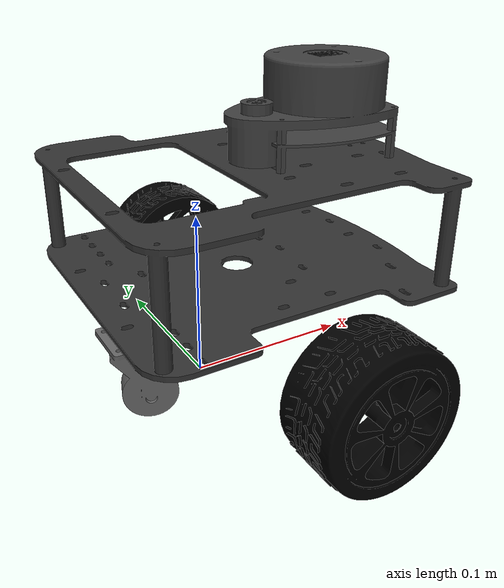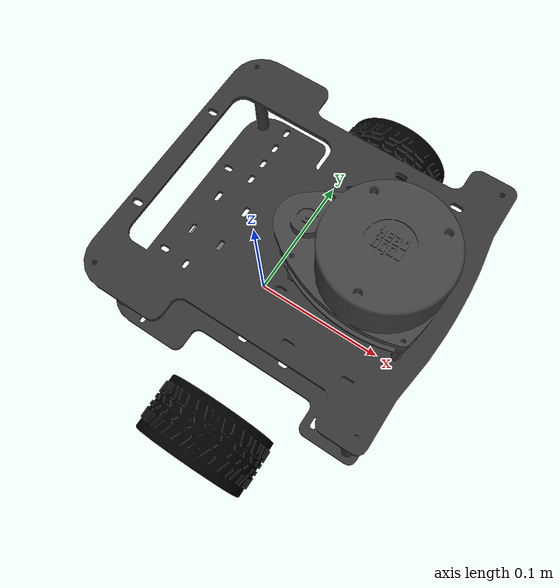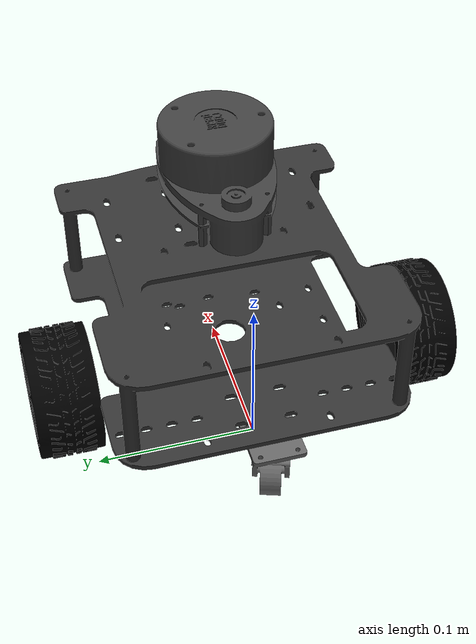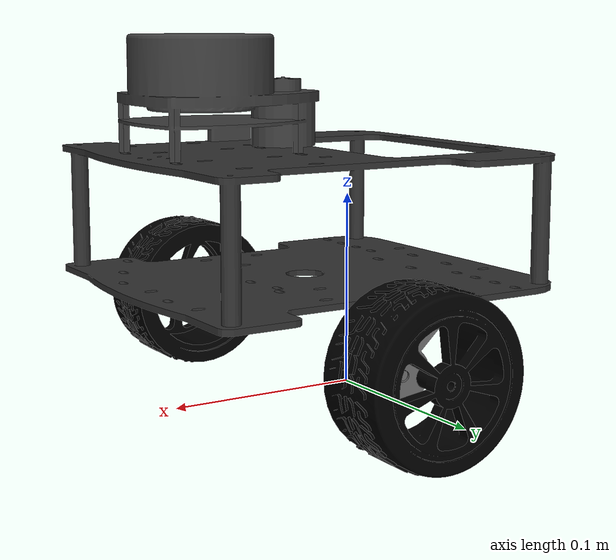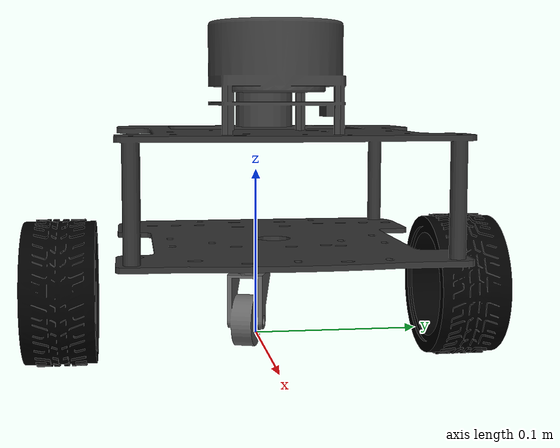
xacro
<?xml version="1.0"?>
<robot xmlns:xacro="http://www.ros.org/wiki/xacro" name="oryksbot">

    <xacro:include filename="$(find oryksbot_description)/urdf/oryksbot_properties.xacro"/>
    <xacro:include filename="$(find oryksbot_description)/urdf/macros.xacro"/>
    <xacro:include filename="$(find oryksbot_description)/urdf/materials.xacro"/>
    <xacro:include filename="$(find oryksbot_description)/urdf/gazebo_properties.xacro"/>
    <xacro:include filename="$(find oryksbot_description)/urdf/gazebo_plugins.xacro"/>
    <xacro:include filename="$(find oryksbot_description)/urdf/gazebo_physics.xacro"/>

    <link name="base_footprint"/>

    <joint name="base_joint" type="fixed">
        <parent link="base_footprint"/>
        <child link="base_link"/>
        <origin xyz="0.0 0.0 ${base_height/2 + wheel_radius}" rpy="0 0 0"/>
    </joint>

    <!-- Robot Base -->
    <link name="base_link">
        <visual>
            <origin xyz="0.03 0 0" rpy="0 0 ${pi/2}"/>
        <geometry>
            <mesh filename="package://oryksbot_description/meshes/base_link.STL" />
        </geometry>
            <material name="grey"/>
        </visual>

        <collision>
        <geometry>
            <box size="${base_length} ${base_width} ${base_height}"/>
        </geometry>
        </collision>

        <xacro:box_inertia m="${base_mass}" w="${base_width}" d="${base_length}" h="${base_height}"/>
    </link>

    <xacro:wheel prefix="left" x_reflect="-1" y_reflect="1" />
    <xacro:wheel prefix="right" x_reflect="-1" y_reflect="-1" />

    <link name="caster">
      <visual>
        <origin xyz="0 0 0" rpy="${pi/2} 0 0"/>
        <geometry>
          <mesh filename="package://oryksbot_description/meshes/caster_wheel.STL" />
        </geometry>
        <material name="light_black" />
      </visual>

      <collision>
        <origin xyz="0 0 0" rpy="${pi/2} 0 0"/>
        <geometry>
          <cylinder radius="${wheel_radius}" length="${wheel_tread}"/>
        </geometry>
      </collision>

      <xacro:cylinder_inertia m="${wheel_mass}" r="${wheel_radius}" h="${wheel_tread}"/>
    </link>

    <joint name="caster_joint" type="continuous">
      <parent link="base_link"/>
      <child link="caster"/>
      <origin xyz="${caster_x} 0.0 ${-base_height/2}" rpy="0 0 0"/>
      <axis xyz="0 1 0"/>
    </joint>

    <link name="base_scan">
        <visual>
            <origin xyz="0 0 0.02" rpy="${pi/2} 0 ${pi}"/>
            <geometry>
                <mesh filename="package://oryksbot_description/meshes/lidar.STL" />
            </geometry>
            <material name="dark_grey"/>
        </visual>

        <collision>
            <origin xyz="0 0 0" rpy="0 0 0"/>
            <geometry>
                <cylinder length="${lidar_height}" radius="${lidar_radius}"/>
            </geometry>
        </collision>

        <inertial>
            <mass value="${lidar_mass}" />
            <origin xyz="0 0 0" />
            <inertia ixx="0.001" ixy="0.0" ixz="0.0"
                    iyy="0.001" iyz="0.0"
                    izz="0.001" />
        </inertial>
    </link>

    <joint name="scan_joint" type="fixed">
        <parent link="base_link"/>
        <child link="base_scan"/>
        <origin xyz="${lidar_x} 0 ${base_height/2 + lidar_height/2}" rpy="0 0 0"/>
    </joint>

</robot>

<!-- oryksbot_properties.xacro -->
<robot xmlns:xacro="http://www.ros.org/wiki/xacro" name="oryksbot">

    <xacro:property name="base_width" value="0.190"/>
    <xacro:property name="base_height" value="0.070"/>
    <xacro:property name="base_mass" value="10"/>
    <xacro:property name="base_length" value="0.2"/>

    <xacro:property name="wheel_radius" value="0.034"/>
    <xacro:property name="wheel_tread" value="0.03"/>
    <xacro:property name="wheel_mass" value="5"/>
    <xacro:property name="wheel_joint_offset_x" value="-0.035"/>
    <xacro:property name="wheel_joint_offset_y" value="0.0"/>
    <xacro:property name="wheel_joint_offset_z" value="0.000"/>
    <xacro:property name="wheel_separation" value="0.18"/>

    <xacro:property name="caster_x" value="-0.040"/>

    <xacro:property name="lidar_radius" value="0.02"/>
    <xacro:property name="lidar_height" value="0.050"/>
    <xacro:property name="lidar_mass" value="0.114"/>
    <xacro:property name="lidar_x" value="0.07"/>

</robot>

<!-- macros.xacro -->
<robot xmlns:xacro="http://www.ros.org/wiki/xacro" name="oryksbot">

  <xacro:macro name="box_inertia" params="m w h d">
    <inertial>
      <origin xyz="0 0 0" rpy="0 0 0"/>
      <mass value="${m}"/>
      <inertia
        ixx="${(m/12) * (h*h + d*d)}"
        ixy="0.0" ixz="0.0" iyy="${(m/12) * (w*w + d*d)}"
        iyz="0.0"
        izz="${(m/12) * (w*w + h*h)}"/>
    </inertial>
  </xacro:macro>

  <xacro:macro name="cylinder_inertia" params="m r h">
    <inertial>
      <origin xyz="0 0 0" rpy="${pi/2} 0 0" />
      <mass value="${m}"/>
      <inertia
        ixx="${(m/12) * (3*r*r + h*h)}"
        ixy = "0"
        ixz = "0"
        iyy="${(m/12) * (3*r*r + h*h)}"
        iyz = "0"
        izz="${(m/2) * (r*r)}"/>
    </inertial>
  </xacro:macro>

  <xacro:macro name="sphere_inertia" params="m r">
    <inertial>
      <mass value="${m}"/>
      <inertia
        ixx="${(2/5) * m * (r*r)}"
        ixy="0.0"
        ixz="0.0"
        iyy="${(2/5) * m * (r*r)}"
        iyz="0.0"
        izz="${(2/5) * m * (r*r)}"/>
    </inertial>
  </xacro:macro>

  <!-- Wheels -->
  <xacro:macro name="wheel" params="prefix x_reflect y_reflect ">
    <link name="${prefix}_link">
      <visual>
        <origin xyz="0 0 0" rpy="${y_reflect*(pi/2)} 0 0"/>
        <geometry>
          <mesh filename="package://oryksbot_description/meshes/${prefix}_wheel.STL" />
        </geometry>
        <material name="black" />
      </visual>

      <collision>
        <origin xyz="0 0 0" rpy="${pi/2} 0 0"/>
        <geometry>
          <cylinder radius="${wheel_radius}" length="${wheel_tread}"/>
        </geometry>
      </collision>

      <xacro:cylinder_inertia m="${wheel_mass}" r="${wheel_radius}" h="${wheel_tread}"/>
    </link>

    <joint name="${prefix}_joint" type="continuous">
      <parent link="base_link"/>
      <child link="${prefix}_link"/>
      <origin xyz="${x_reflect*wheel_joint_offset_x} ${y_reflect*(base_width/2+wheel_joint_offset_y)} ${-base_height/2}" rpy="0 0 0"/>
      <axis xyz="0 1 0"/>
    </joint>
  </xacro:macro>

</robot>

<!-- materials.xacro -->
<robot xmlns:xacro="http://www.ros.org/wiki/xacro" name="oryksbot">

    <material name="Cyan">
        <color rgba="0 1.0 1.0 1.0"/>
    </material>

    <!-- Init colour -->
    <material name="black">
        <color rgba="0.0 0.0 0.0 1.0"/>
    </material>

    <material name="dark">
        <color rgba="0.3 0.3 0.3 1.0"/>
    </material>

    <material name="light_black">
        <color rgba="0.4 0.4 0.4 1.0"/>
    </material>

    <material name="blue">
        <color rgba="0.0 0.0 0.8 1.0"/>
    </material>

    <material name="green">
        <color rgba="0.0 0.8 0.0 1.0"/>
    </material>

    <material name="grey">
        <color rgba="0.2 0.2 0.2 1.0"/>
    </material>

    <material name="light_grey">
        <color rgba="0.25098 0.25098 0.25098 0.32"/>
    </material>

    <material name="dark_grey">
        <color rgba="0.250980392156863 0.250980392156863 0.250980392156863 1"/>
    </material>

    <material name="orange">
        <color rgba="${255/255} ${108/255} ${10/255} 1.0"/>
    </material>

    <material name="brown">
        <color rgba="${222/255} ${207/255} ${195/255} 1.0"/>
    </material>

    <material name="red">
        <color rgba="0.8 0.0 0.0 1.0"/>
    </material>

    <material name="white">
        <color rgba="1.0 1.0 1.0 1.0"/>
    </material>

</robot>
